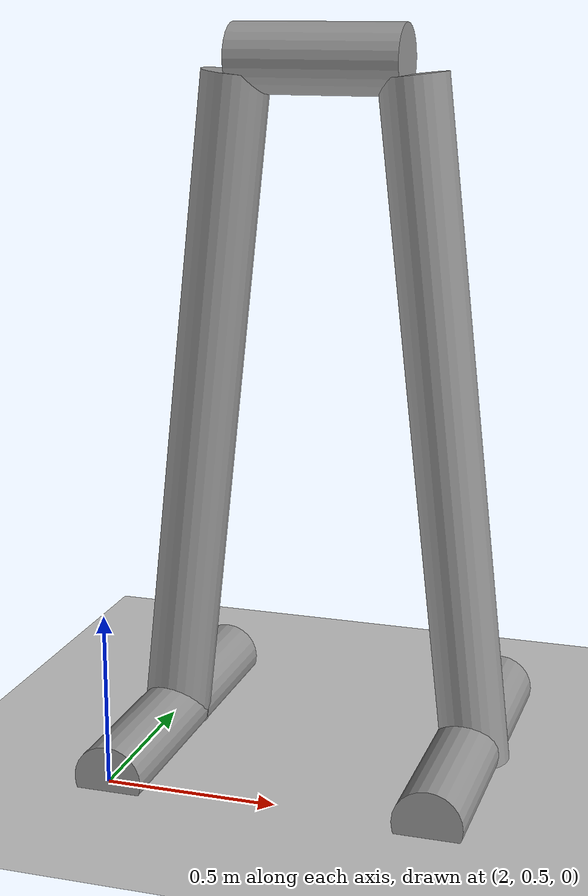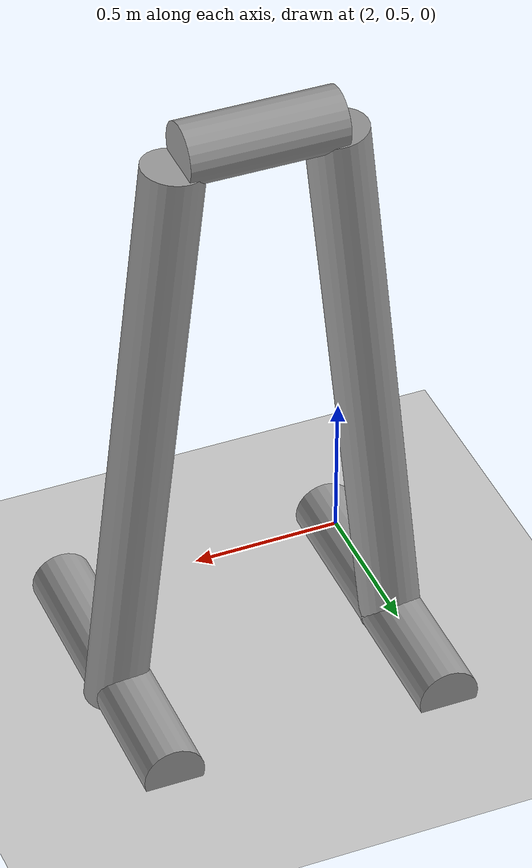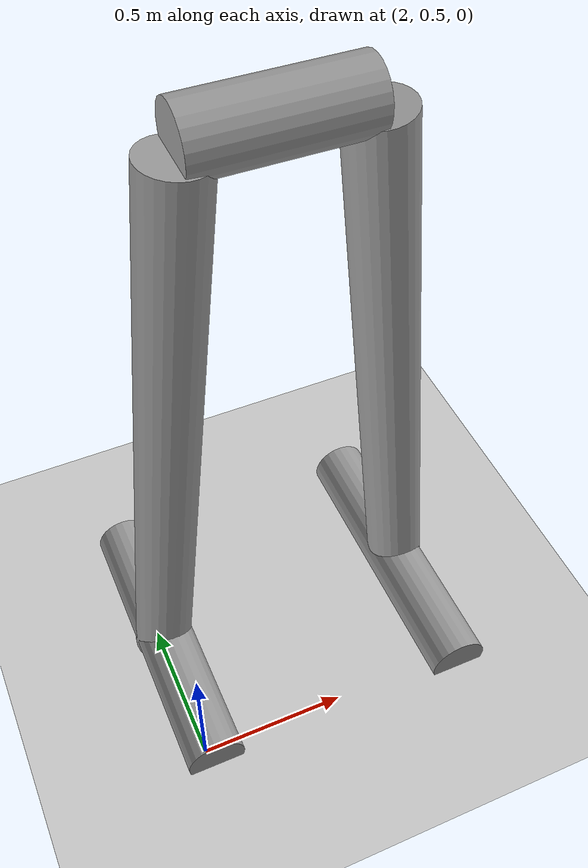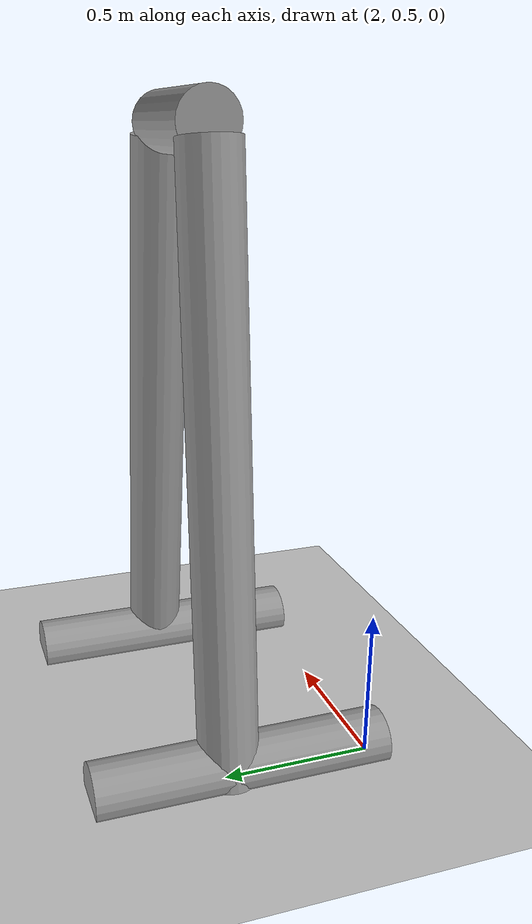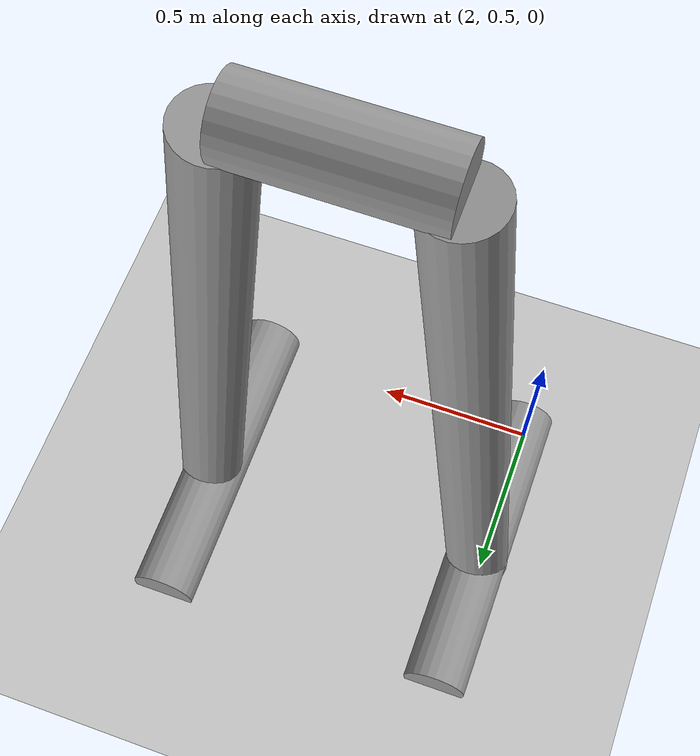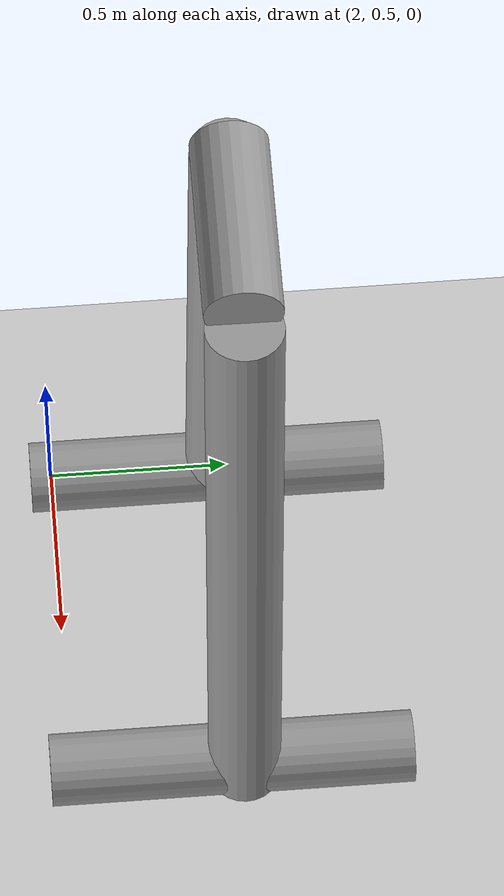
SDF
<sdf version="1.6">
 <world name="default">
  <model name="ground_plane">
   <static>1</static>
   <link name="link">
    <collision name="collision">
     <geometry><plane><normal>0 0 1</normal><size>100 100</size></plane></geometry>
     <surface><friction><ode><mu>100</mu><mu2>50</mu2></ode></friction></surface>
    </collision>
    <visual name="visual">
     <cast_shadows>0</cast_shadows>
     <geometry><plane><normal>0 0 1</normal><size>100 100</size></plane></geometry>
     <material>
      <script><uri>file://media/materials/scripts/gazebo.material</uri><name>Gazebo/Grey</name></script>
     </material>
    </visual>
   </link>
  </model>
  <model name="gray_obstacle">
   <link name="link_7_clone">
    <inertial>
     <mass>1</mass>
     <inertia><ixx>0.145833</ixx><ixy>0</ixy><ixz>0</ixz><iyy>0.145833</iyy><iyz>0</iyz><izz>0.125</izz></inertia>
    </inertial>
    <pose>-0.466156 -0.025083 -0.775714 1.56843 -0 0</pose>
    <visual name="visual">
     <geometry><cylinder><radius>0.1</radius><length>1</length></cylinder></geometry>
     <material>
      <lighting>1</lighting>
      <script><uri>file://media/materials/scripts/gazebo.material</uri><name>Gazebo/Grey</name></script>
      <shader type="pixel"><normal_map>__default__</normal_map></shader>
      <ambient>0.3 0.3 0.3 1</ambient>
      <diffuse>0.7 0.7 0.7 1</diffuse>
      <specular>0.01 0.01 0.01 1</specular>
      <emissive>0 0 0 1</emissive>
     </material>
    </visual>
    <collision name="collision">
     <geometry><cylinder><radius>0.1</radius><length>1</length></cylinder></geometry>
     <surface>
      <friction>
       <ode><mu>1</mu><mu2>1</mu2><fdir1>0 0 0</fdir1><slip1>0</slip1><slip2>0</slip2></ode>
       <torsional>
        <coefficient>1</coefficient>
        <patch_radius>0</patch_radius>
        <surface_radius>0</surface_radius>
        <use_patch_radius>1</use_patch_radius>
        <ode><slip>0</slip></ode>
       </torsional>
      </friction>
      <bounce><restitution_coefficient>0</restitution_coefficient><threshold>1e+06</threshold></bounce>
      <contact>
       <collide_without_contact>0</collide_without_contact>
       <collide_without_contact_bitmask>1</collide_without_contact_bitmask>
       <collide_bitmask>1</collide_bitmask>
       <ode>
        <soft_cfm>0</soft_cfm>
        <soft_erp>0.2</soft_erp>
        <kp>1e+13</kp>
        <kd>1</kd>
        <max_vel>0.01</max_vel>
        <min_depth>0</min_depth>
       </ode>
       <bullet>
        <split_impulse>1</split_impulse>
        <split_impulse_penetration_threshold>-0.01</split_impulse_penetration_threshold>
        <soft_cfm>0</soft_cfm>
        <soft_erp>0.2</soft_erp>
        <kp>1e+13</kp>
        <kd>1</kd>
       </bullet>
      </contact>
     </surface>
    </collision>
   </link>
   <link name="link_7_clone_clone">
    <inertial>
     <mass>1</mass>
     <inertia><ixx>0.145833</ixx><ixy>0</ixy><ixz>0</ixz><iyy>0.145833</iyy><iyz>0</iyz><izz>0.125</izz></inertia>
    </inertial>
    <pose>-0.361144 0.017632 0.17283 -0.002067 0.110772 -0.005761</pose>
    <visual name="visual">
     <geometry><cylinder><radius>0.1</radius><length>2</length></cylinder></geometry>
     <material>
      <lighting>1</lighting>
      <script><uri>file://media/materials/scripts/gazebo.material</uri><name>Gazebo/Grey</name></script>
      <shader type="pixel"><normal_map>__default__</normal_map></shader>
      <ambient>0.3 0.3 0.3 1</ambient>
      <diffuse>0.7 0.7 0.7 1</diffuse>
      <specular>0.01 0.01 0.01 1</specular>
      <emissive>0 0 0 1</emissive>
     </material>
    </visual>
    <collision name="collision">
     <geometry><cylinder><radius>0.1</radius><length>2</length></cylinder></geometry>
     <surface>
      <friction>
       <ode><mu>1</mu><mu2>1</mu2><fdir1>0 0 0</fdir1><slip1>0</slip1><slip2>0</slip2></ode>
       <torsional>
        <coefficient>1</coefficient>
        <patch_radius>0</patch_radius>
        <surface_radius>0</surface_radius>
        <use_patch_radius>1</use_patch_radius>
        <ode><slip>0</slip></ode>
       </torsional>
      </friction>
      <bounce><restitution_coefficient>0</restitution_coefficient><threshold>1e+06</threshold></bounce>
      <contact>
       <collide_without_contact>0</collide_without_contact>
       <collide_without_contact_bitmask>1</collide_without_contact_bitmask>
       <collide_bitmask>1</collide_bitmask>
       <ode>
        <soft_cfm>0</soft_cfm>
        <soft_erp>0.2</soft_erp>
        <kp>1e+13</kp>
        <kd>1</kd>
        <max_vel>0.01</max_vel>
        <min_depth>0</min_depth>
       </ode>
       <bullet>
        <split_impulse>1</split_impulse>
        <split_impulse_penetration_threshold>-0.01</split_impulse_penetration_threshold>
        <soft_cfm>0</soft_cfm>
        <soft_erp>0.2</soft_erp>
        <kp>1e+13</kp>
        <kd>1</kd>
       </bullet>
      </contact>
     </surface>
    </collision>
   </link>
   <link name="link_7_clone_clone_0">
    <inertial>
     <mass>1</mass>
     <inertia><ixx>0.145833</ixx><ixy>0</ixy><ixz>0</ixz><iyy>0.145833</iyy><iyz>0</iyz><izz>0.125</izz></inertia>
    </inertial>
    <pose>-0.005883 0.018735 1.20577 1.57078 0.002366 1.56494</pose>
    <visual name="visual">
     <geometry><cylinder><radius>0.1</radius><length>0.5</length></cylinder></geometry>
     <material>
      <lighting>1</lighting>
      <script><uri>file://media/materials/scripts/gazebo.material</uri><name>Gazebo/Grey</name></script>
      <shader type="pixel"><normal_map>__default__</normal_map></shader>
      <ambient>0.3 0.3 0.3 1</ambient>
      <diffuse>0.7 0.7 0.7 1</diffuse>
      <specular>0.01 0.01 0.01 1</specular>
      <emissive>0 0 0 1</emissive>
     </material>
    </visual>
    <collision name="collision">
     <geometry><cylinder><radius>0.1</radius><length>0.5</length></cylinder></geometry>
     <surface>
      <friction>
       <ode><mu>1</mu><mu2>1</mu2><fdir1>0 0 0</fdir1><slip1>0</slip1><slip2>0</slip2></ode>
       <torsional>
        <coefficient>1</coefficient>
        <patch_radius>0</patch_radius>
        <surface_radius>0</surface_radius>
        <use_patch_radius>1</use_patch_radius>
        <ode><slip>0</slip></ode>
       </torsional>
      </friction>
      <bounce><restitution_coefficient>0</restitution_coefficient><threshold>1e+06</threshold></bounce>
      <contact>
       <collide_without_contact>0</collide_without_contact>
       <collide_without_contact_bitmask>1</collide_without_contact_bitmask>
       <collide_bitmask>1</collide_bitmask>
       <ode>
        <soft_cfm>0</soft_cfm>
        <soft_erp>0.2</soft_erp>
        <kp>1e+13</kp>
        <kd>1</kd>
        <max_vel>0.01</max_vel>
        <min_depth>0</min_depth>
       </ode>
       <bullet>
        <split_impulse>1</split_impulse>
        <split_impulse_penetration_threshold>-0.01</split_impulse_penetration_threshold>
        <soft_cfm>0</soft_cfm>
        <soft_erp>0.2</soft_erp>
        <kp>1e+13</kp>
        <kd>1</kd>
       </bullet>
      </contact>
     </surface>
    </collision>
   </link>
   <link name="link_7_clone_clone_2">
    <inertial>
     <mass>1</mass>
     <inertia><ixx>0.145833</ixx><ixy>0</ixy><ixz>0</ixz><iyy>0.145833</iyy><iyz>0</iyz><izz>0.125</izz></inertia>
    </inertial>
    <pose>0.461653 -0.025083 -0.775714 1.56843 -0 0</pose>
    <visual name="visual">
     <geometry><cylinder><radius>0.1</radius><length>1</length></cylinder></geometry>
     <material>
      <lighting>1</lighting>
      <script><uri>file://media/materials/scripts/gazebo.material</uri><name>Gazebo/Grey</name></script>
      <shader type="pixel"><normal_map>__default__</normal_map></shader>
      <ambient>0.3 0.3 0.3 1</ambient>
      <diffuse>0.7 0.7 0.7 1</diffuse>
      <specular>0.01 0.01 0.01 1</specular>
      <emissive>0 0 0 1</emissive>
     </material>
    </visual>
    <collision name="collision">
     <geometry><cylinder><radius>0.1</radius><length>1</length></cylinder></geometry>
     <surface>
      <friction>
       <ode><mu>1</mu><mu2>1</mu2><fdir1>0 0 0</fdir1><slip1>0</slip1><slip2>0</slip2></ode>
       <torsional>
        <coefficient>1</coefficient>
        <patch_radius>0</patch_radius>
        <surface_radius>0</surface_radius>
        <use_patch_radius>1</use_patch_radius>
        <ode><slip>0</slip></ode>
       </torsional>
      </friction>
      <bounce><restitution_coefficient>0</restitution_coefficient><threshold>1e+06</threshold></bounce>
      <contact>
       <collide_without_contact>0</collide_without_contact>
       <collide_without_contact_bitmask>1</collide_without_contact_bitmask>
       <collide_bitmask>1</collide_bitmask>
       <ode>
        <soft_cfm>0</soft_cfm>
        <soft_erp>0.2</soft_erp>
        <kp>1e+13</kp>
        <kd>1</kd>
        <max_vel>0.01</max_vel>
        <min_depth>0</min_depth>
       </ode>
       <bullet>
        <split_impulse>1</split_impulse>
        <split_impulse_penetration_threshold>-0.01</split_impulse_penetration_threshold>
        <soft_cfm>0</soft_cfm>
        <soft_erp>0.2</soft_erp>
        <kp>1e+13</kp>
        <kd>1</kd>
       </bullet>
      </contact>
     </surface>
    </collision>
   </link>
   <link name="link_7_clone_clone_clone">
    <inertial>
     <mass>1</mass>
     <inertia><ixx>0.145833</ixx><ixy>0</ixy><ixz>0</ixz><iyy>0.145833</iyy><iyz>0</iyz><izz>0.125</izz></inertia>
    </inertial>
    <pose>0.37153 0.013812 0.17283 0.002067 0.110772 3.11949</pose>
    <visual name="visual">
     <geometry><cylinder><radius>0.1</radius><length>2</length></cylinder></geometry>
     <material>
      <lighting>1</lighting>
      <script><uri>file://media/materials/scripts/gazebo.material</uri><name>Gazebo/Grey</name></script>
      <shader type="pixel"><normal_map>__default__</normal_map></shader>
      <ambient>0.3 0.3 0.3 1</ambient>
      <diffuse>0.7 0.7 0.7 1</diffuse>
      <specular>0.01 0.01 0.01 1</specular>
      <emissive>0 0 0 1</emissive>
     </material>
    </visual>
    <collision name="collision">
     <geometry><cylinder><radius>0.1</radius><length>2</length></cylinder></geometry>
     <surface>
      <friction>
       <ode><mu>1</mu><mu2>1</mu2><fdir1>0 0 0</fdir1><slip1>0</slip1><slip2>0</slip2></ode>
       <torsional>
        <coefficient>1</coefficient>
        <patch_radius>0</patch_radius>
        <surface_radius>0</surface_radius>
        <use_patch_radius>1</use_patch_radius>
        <ode><slip>0</slip></ode>
       </torsional>
      </friction>
      <bounce><restitution_coefficient>0</restitution_coefficient><threshold>1e+06</threshold></bounce>
      <contact>
       <collide_without_contact>0</collide_without_contact>
       <collide_without_contact_bitmask>1</collide_without_contact_bitmask>
       <collide_bitmask>1</collide_bitmask>
       <ode>
        <soft_cfm>0</soft_cfm>
        <soft_erp>0.2</soft_erp>
        <kp>1e+13</kp>
        <kd>1</kd>
        <max_vel>0.01</max_vel>
        <min_depth>0</min_depth>
       </ode>
       <bullet>
        <split_impulse>1</split_impulse>
        <split_impulse_penetration_threshold>-0.01</split_impulse_penetration_threshold>
        <soft_cfm>0</soft_cfm>
        <soft_erp>0.2</soft_erp>
        <kp>1e+13</kp>
        <kd>1</kd>
       </bullet>
      </contact>
     </surface>
    </collision>
   </link>
   <static>1</static>
   <pose>2.48653 0.967366 0.80632 0 -0 0</pose>
  </model>
 </world>
</sdf>
